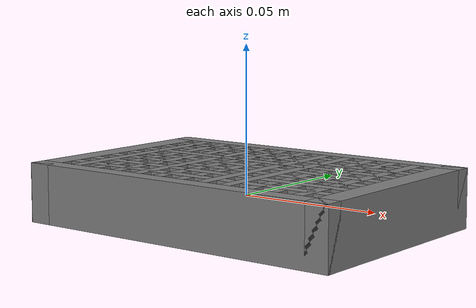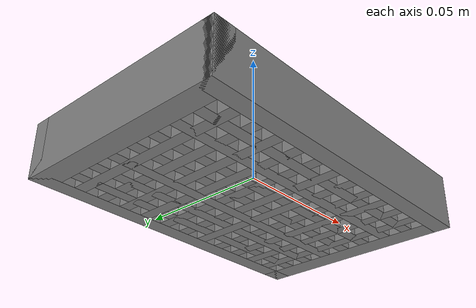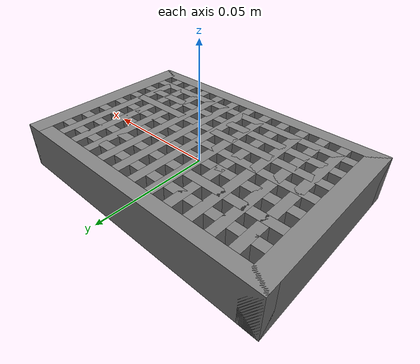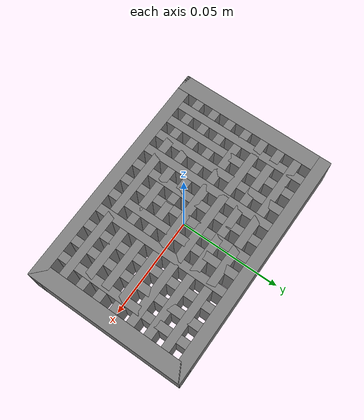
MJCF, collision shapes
<mujoco model="pcr_plate_96well">
  <compiler angle="radian" meshdir="../../assets/" />

  <asset>
    <mesh name="pcr_plate_96well-visual_visual" file="container/pcr_plate_96well_vis/visual.obj" scale="0.001 0.001 0.001" />
  </asset>

  <worldbody>
    <body name="pcr_plate_96well">
      <geom size="0.06 0.00305 0.0101" pos="0 0.03695 0" type="box" group="3" friction="1.5 0.1 0.01" solref="0.005 1" solimp="0.9 0.95 0.001" />
      <geom size="0.06 0.00305 0.0101" pos="0 -0.03695 0" type="box" group="3" friction="1.5 0.1 0.01" solref="0.005 1" solimp="0.9 0.95 0.001" />
      <geom size="0.00405 0.04 0.0101" pos="0.05595 0 0" type="box" group="3" friction="1.5 0.1 0.01" solref="0.005 1" solimp="0.9 0.95 0.001" />
      <geom size="0.00405 0.04 0.0101" pos="-0.05595 0 0" type="box" group="3" friction="1.5 0.1 0.01" solref="0.005 1" solimp="0.9 0.95 0.001" />
      <geom type="mesh" contype="0" conaffinity="0" group="2" mesh="pcr_plate_96well-visual_visual" />
      <frame>
        <geom size="0.0021 0.0339 0.0101" pos="-0.045 0 0" type="box" group="3" friction="1.5 0.1 0.01" solref="0.005 1" solimp="0.9 0.95 0.001" />
      </frame>
      <frame>
        <geom size="0.0021 0.0339 0.0101" pos="-0.036 0 0" type="box" group="3" friction="1.5 0.1 0.01" solref="0.005 1" solimp="0.9 0.95 0.001" />
      </frame>
      <frame>
        <geom size="0.0021 0.0339 0.0101" pos="-0.027 0 0" type="box" group="3" friction="1.5 0.1 0.01" solref="0.005 1" solimp="0.9 0.95 0.001" />
      </frame>
      <frame>
        <geom size="0.0021 0.0339 0.0101" pos="-0.018 0 0" type="box" group="3" friction="1.5 0.1 0.01" solref="0.005 1" solimp="0.9 0.95 0.001" />
      </frame>
      <frame>
        <geom size="0.0021 0.0339 0.0101" pos="-0.009 0 0" type="box" group="3" friction="1.5 0.1 0.01" solref="0.005 1" solimp="0.9 0.95 0.001" />
      </frame>
      <frame>
        <geom size="0.0021 0.0339 0.0101" type="box" group="3" friction="1.5 0.1 0.01" solref="0.005 1" solimp="0.9 0.95 0.001" />
      </frame>
      <frame>
        <geom size="0.0021 0.0339 0.0101" pos="0.009 0 0" type="box" group="3" friction="1.5 0.1 0.01" solref="0.005 1" solimp="0.9 0.95 0.001" />
      </frame>
      <frame>
        <geom size="0.0021 0.0339 0.0101" pos="0.018 0 0" type="box" group="3" friction="1.5 0.1 0.01" solref="0.005 1" solimp="0.9 0.95 0.001" />
      </frame>
      <frame>
        <geom size="0.0021 0.0339 0.0101" pos="0.027 0 0" type="box" group="3" friction="1.5 0.1 0.01" solref="0.005 1" solimp="0.9 0.95 0.001" />
      </frame>
      <frame>
        <geom size="0.0021 0.0339 0.0101" pos="0.036 0 0" type="box" group="3" friction="1.5 0.1 0.01" solref="0.005 1" solimp="0.9 0.95 0.001" />
      </frame>
      <frame>
        <geom size="0.0021 0.0339 0.0101" pos="0.045 0 0" type="box" group="3" friction="1.5 0.1 0.01" solref="0.005 1" solimp="0.9 0.95 0.001" />
      </frame>
      <frame>
        <geom size="0.0519 0.0021 0.0101" pos="0 -0.027 0" type="box" group="3" friction="1.5 0.1 0.01" solref="0.005 1" solimp="0.9 0.95 0.001" />
      </frame>
      <frame>
        <geom size="0.0519 0.0021 0.0101" pos="0 -0.018 0" type="box" group="3" friction="1.5 0.1 0.01" solref="0.005 1" solimp="0.9 0.95 0.001" />
      </frame>
      <frame>
        <geom size="0.0519 0.0021 0.0101" pos="0 -0.009 0" type="box" group="3" friction="1.5 0.1 0.01" solref="0.005 1" solimp="0.9 0.95 0.001" />
      </frame>
      <frame>
        <geom size="0.0519 0.0021 0.0101" type="box" group="3" friction="1.5 0.1 0.01" solref="0.005 1" solimp="0.9 0.95 0.001" />
      </frame>
      <frame>
        <geom size="0.0519 0.0021 0.0101" pos="0 0.009 0" type="box" group="3" friction="1.5 0.1 0.01" solref="0.005 1" solimp="0.9 0.95 0.001" />
      </frame>
      <frame>
        <geom size="0.0519 0.0021 0.0101" pos="0 0.018 0" type="box" group="3" friction="1.5 0.1 0.01" solref="0.005 1" solimp="0.9 0.95 0.001" />
      </frame>
      <frame>
        <geom size="0.0519 0.0021 0.0101" pos="0 0.027 0" type="box" group="3" friction="1.5 0.1 0.01" solref="0.005 1" solimp="0.9 0.95 0.001" />
      </frame>
    </body>
  </worldbody>
</mujoco>
